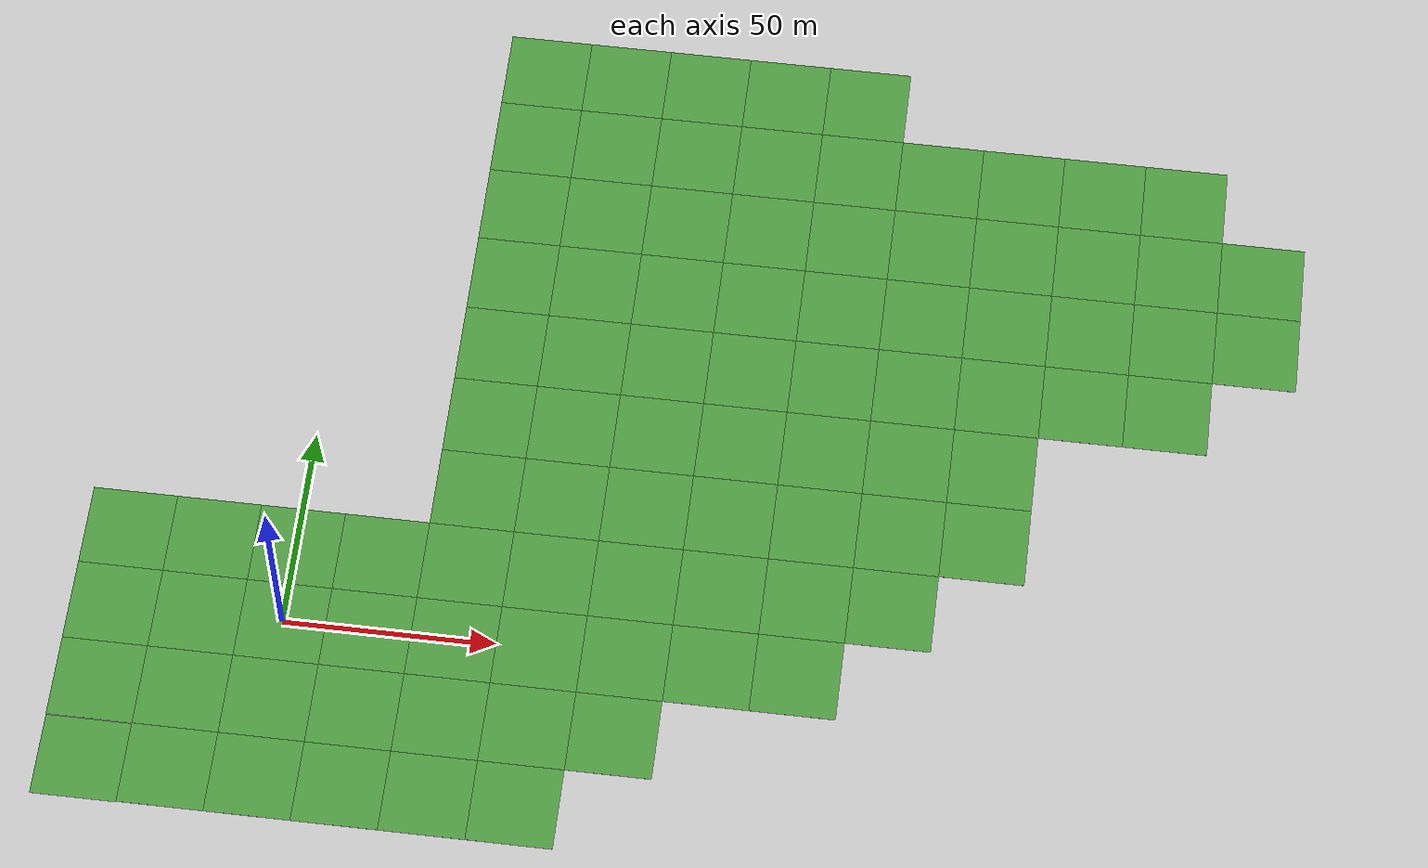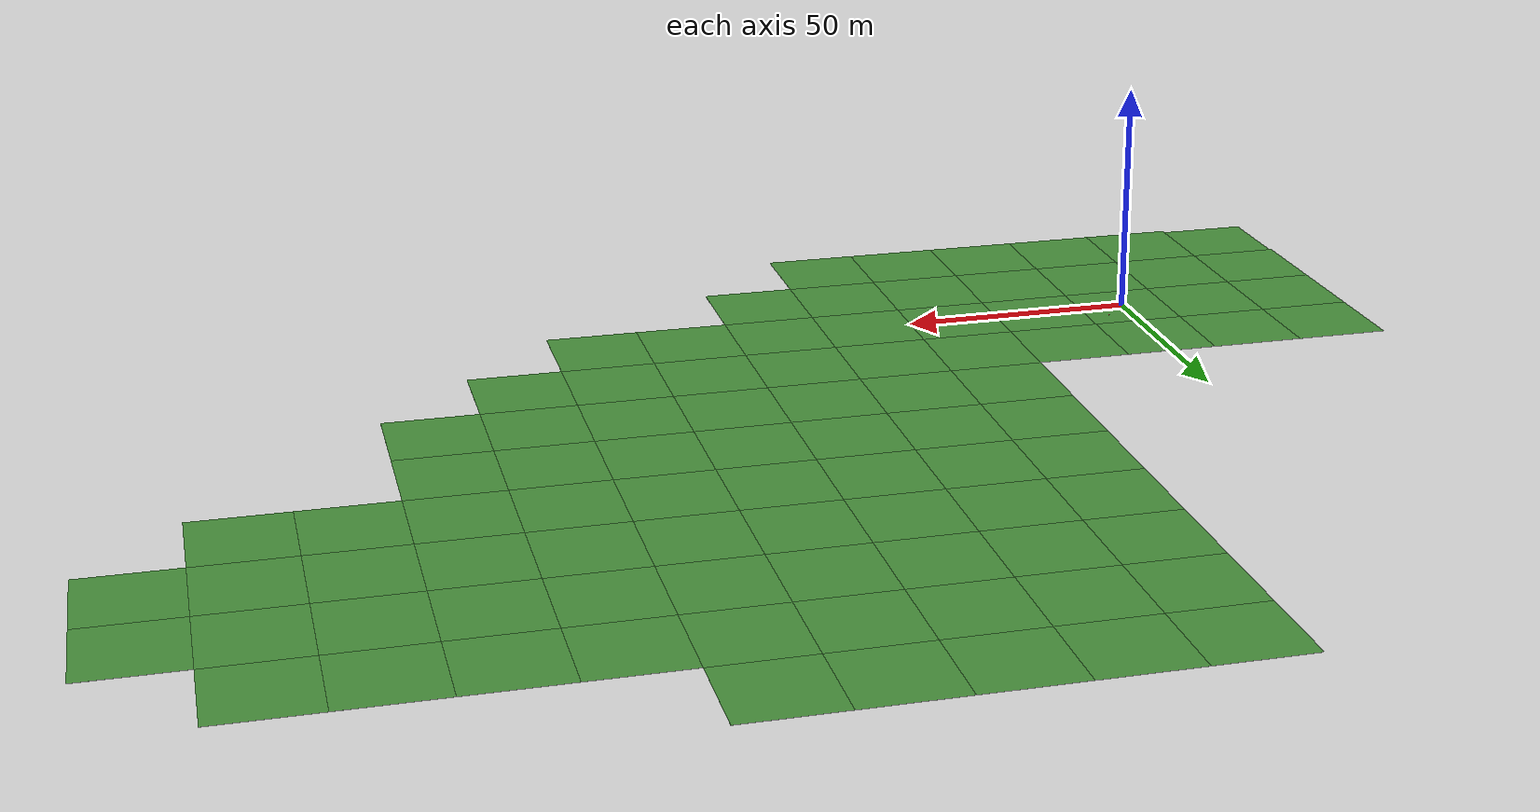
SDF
<sdf version="1.5">
 <world name="outdoor">
  <scene>
   <ambient>0.2 0.2 0.2 1.0</ambient>
   <shadows>0</shadows>
   <grid>false</grid>
   <sky><clouds><speed>4</speed></clouds></sky>
  </scene>
  <physics type="ode">
   <ode>
    <solver><type>quick</type><iters>100</iters><sor>1.0</sor></solver>
    <constraints>
     <cfm>0.0</cfm>
     <erp>0.9</erp>
     <contact_max_correcting_vel>0.1</contact_max_correcting_vel>
     <contact_surface_layer>0.0</contact_surface_layer>
    </constraints>
   </ode>
   <real_time_update_rate>1000</real_time_update_rate>
   <max_step_size>0.0010</max_step_size>
  </physics>
  <light type="directional" name="sun">
   <cast_shadows>false</cast_shadows>
   <pose>0 0 100 0 0 0</pose>
   <diffuse>0.8 0.8 0.8 1</diffuse>
   <specular>0.9 0.9 0.9 1</specular>
   <attenuation>
    <range>1000</range>
    <constant>0.9</constant>
    <linear>0.01</linear>
    <quadratic>0.001</quadratic>
   </attenuation>
   <direction>0.2 0.2 -0.9</direction>
  </light>
  <include><uri>model://grass_plane</uri></include>
  <model name="landmine1"><include><uri>model://landmine</uri></include><pose>5 5 0 0 0 0</pose></model>
  <model name="landmine2"><include><uri>model://landmine</uri></include><pose>2 -2 0 0 0 0</pose></model>
  <model name="landmine3"><include><uri>model://landmine</uri></include><pose>-3 -5 0 0 0 0</pose></model>
  <model name="landmine4"><include><uri>model://landmine</uri></include><pose>-1 3 0 0 0 0</pose></model>
 </world>
</sdf>

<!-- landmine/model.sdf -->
<sdf version="1.6">
  <model name="landmine">
    <static>false</static>

    <link name="body">
      <!-- Inertial: combined mass ~0.3kg, approximated as a solid cylinder. COM lifted toward center. -->
      <inertial>
        <pose>0 0 0.03 0 0 0</pose>
        <mass>0.30</mass>
        <inertia>
          <ixx>0.00039</ixx>
          <iyy>0.00039</iyy>
          <izz>0.00045</izz>
          <ixy>0.0</ixy>
          <ixz>0.0</ixz>
          <iyz>0.0</iyz>
        </inertia>
      </inertial>

      <!-- ===== Disc body (mine) ===== -->
      <collision name="disc_collision">
        <pose>0 0 0.0125 0 0 0</pose>
        <geometry>
          <cylinder>
            <radius>0.068</radius>
            <length>0.025</length>
          </cylinder>
        </geometry>
        <surface>
          <friction>
            <ode>
              <mu>1.0</mu>
              <mu2>1.0</mu2>
            </ode>
          </friction>
          <contact>
            <ode>
              <kp>1e6</kp>
              <kd>1.0</kd>
              <max_vel>0.0</max_vel>
              <min_depth>0.001</min_depth>
            </ode>
          </contact>
        </surface>
      </collision>
      <visual name="disc_visual">
        <pose>0 0 0.0125 0 0 0</pose>
        <geometry>
          <cylinder>
            <radius>0.068</radius>
            <length>0.025</length>
          </cylinder>
        </geometry>
        <material>
          <ambient>0.7 0.05 0.05 1</ambient>
          <diffuse>0.85 0.1 0.1 1</diffuse>
          <specular>0.1 0.1 0.1 1</specular>
        </material>
      </visual>

      <!-- ===== Detonator block (grasp target) ===== -->
      <collision name="detonator_collision">
        <pose>0 0 0.055 0 0 0</pose>
        <geometry>
          <box>
            <size>0.04 0.04 0.06</size>
          </box>
        </geometry>
        <surface>
          <friction>
            <ode>
              <mu>1.2</mu>
              <mu2>1.2</mu2>
            </ode>
          </friction>
          <contact>
            <ode>
              <kp>1e6</kp>
              <kd>1.0</kd>
              <max_vel>0.0</max_vel>
              <min_depth>0.001</min_depth>
            </ode>
          </contact>
        </surface>
      </collision>
      <visual name="detonator_visual">
        <pose>0 0 0.055 0 0 0</pose>
        <geometry>
          <box>
            <size>0.04 0.04 0.06</size>
          </box>
        </geometry>
        <material>
          <ambient>0.8 0.7 0.0 1</ambient>
          <diffuse>0.95 0.85 0.0 1</diffuse>
          <specular>0.2 0.2 0.1 1</specular>
        </material>
      </visual>
    </link>
  </model>
</sdf>

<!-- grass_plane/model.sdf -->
<sdf version='1.4'>
  <model name='grass_plane'>
    <static>true</static>
    <link name='link'>
      <collision name='collision'>
        <geometry>
          <plane>
            <normal>0 0 1</normal>
            <size>500 500</size>
          </plane>
        </geometry>
        <surface>
          <friction>
            <ode>
              <mu>0.5</mu>
              <mu2>.5</mu2>
            </ode>
          </friction>
        </surface>
      </collision>

      <visual name='visual_0'>
        <pose>-40 -40 0 0 0 0</pose>

        <cast_shadows>false</cast_shadows>
        <geometry>
          <plane>
            <normal>0 0 1</normal>
            <size>20 20</size>
          </plane>
        </geometry>
        <material>
          <script>
            <uri>model://../model_source/models/grass_plane/materials/scripts</uri>
            <uri>model://../model_source/models/grass_plane/materials/textures</uri>
            <name>vrc/grass</name>
          </script>
        </material>
      </visual>

      <visual name='visual_1'>
        <pose>-20 -40 0 0 0 0</pose>

        <cast_shadows>false</cast_shadows>
        <geometry>
          <plane>
            <normal>0 0 1</normal>
            <size>20 20</size>
          </plane>
        </geometry>
        <material>
          <script>
            <uri>model://../model_source/models/grass_plane/materials/scripts</uri>
            <uri>model://../model_source/models/grass_plane/materials/textures</uri>
            <name>vrc/grass</name>
          </script>
        </material>
      </visual>

      <visual name='visual_2'>
        <pose>0 -40 0 0 0 0</pose>

        <cast_shadows>false</cast_shadows>
        <geometry>
          <plane>
            <normal>0 0 1</normal>
            <size>20 20</size>
          </plane>
        </geometry>
        <material>
          <script>
            <uri>model://../model_source/models/grass_plane/materials/scripts</uri>
            <uri>model://../model_source/models/grass_plane/materials/textures</uri>
            <name>vrc/grass</name>
          </script>
        </material>
      </visual>

      <visual name='visual_3'>
        <pose>20 -40 0 0 0 0</pose>

        <cast_shadows>false</cast_shadows>
        <geometry>
          <plane>
            <normal>0 0 1</normal>
            <size>20 20</size>
          </plane>
        </geometry>
        <material>
          <script>
            <uri>model://../model_source/models/grass_plane/materials/scripts</uri>
            <uri>model://../model_source/models/grass_plane/materials/textures</uri>
            <name>vrc/grass</name>
          </script>
        </material>
      </visual>

      <visual name='visual_4'>
        <pose>40 -40 0 0 0 0</pose>

        <cast_shadows>false</cast_shadows>
        <geometry>
          <plane>
            <normal>0 0 1</normal>
            <size>20 20</size>
          </plane>
        </geometry>
        <material>
          <script>
            <uri>model://../model_source/models/grass_plane/materials/scripts</uri>
            <uri>model://../model_source/models/grass_plane/materials/textures</uri>
            <name>vrc/grass</name>
          </script>
        </material>
      </visual>

      <visual name='visual_5'>
        <pose>60 -40 0 0 0 0</pose>

        <cast_shadows>false</cast_shadows>
        <geometry>
          <plane>
            <normal>0 0 1</normal>
            <size>20 20</size>
          </plane>
        </geometry>
        <material>
          <script>
            <uri>model://../model_source/models/grass_plane/materials/scripts</uri>
            <uri>model://../model_source/models/grass_plane/materials/textures</uri>
            <name>vrc/grass</name>
          </script>
        </material>
      </visual>

      <visual name='visual_6'>
        <pose>-40 -20 0 0 0 0</pose>

        <cast_shadows>false</cast_shadows>
        <geometry>
          <plane>
            <normal>0 0 1</normal>
            <size>20 20</size>
          </plane>
        </geometry>
        <material>
          <script>
            <uri>model://../model_source/models/grass_plane/materials/scripts</uri>
            <uri>model://../model_source/models/grass_plane/materials/textures</uri>
            <name>vrc/grass</name>
          </script>
        </material>
      </visual>

      <visual name='visual_7'>
        <pose>-20 -20 0 0 0 0</pose>

        <cast_shadows>false</cast_shadows>
        <geometry>
          <plane>
            <normal>0 0 1</normal>
            <size>20 20</size>
          </plane>
        </geometry>
        <material>
          <script>
            <uri>model://../model_source/models/grass_plane/materials/scripts</uri>
            <uri>model://../model_source/models/grass_plane/materials/textures</uri>
            <name>vrc/grass</name>
          </script>
        </material>
      </visual>

      <visual name='visual_8'>
        <pose>0 -20 0 0 0 0</pose>

        <cast_shadows>false</cast_shadows>
        <geometry>
          <plane>
            <normal>0 0 1</normal>
            <size>20 20</size>
          </plane>
        </geometry>
        <material>
          <script>
            <uri>model://../model_source/models/grass_plane/materials/scripts</uri>
            <uri>model://../model_source/models/grass_plane/materials/textures</uri>
            <name>vrc/grass</name>
          </script>
        </material>
      </visual>

      <visual name='visual_9'>
        <pose>20 -20 0 0 0 0</pose>

        <cast_shadows>false</cast_shadows>
        <geometry>
          <plane>
            <normal>0 0 1</normal>
            <size>20 20</size>
          </plane>
        </geometry>
        <material>
          <script>
            <uri>model://../model_source/models/grass_plane/materials/scripts</uri>
            <uri>model://../model_source/models/grass_plane/materials/textures</uri>
            <name>vrc/grass</name>
          </script>
        </material>
      </visual>

      <visual name='visual_10'>
        <pose>40 -20 0 0 0 0</pose>

        <cast_shadows>false</cast_shadows>
        <geometry>
          <plane>
            <normal>0 0 1</normal>
            <size>20 20</size>
          </plane>
        </geometry>
        <material>
          <script>
            <uri>model://../model_source/models/grass_plane/materials/scripts</uri>
            <uri>model://../model_source/models/grass_plane/materials/textures</uri>
            <name>vrc/grass</name>
          </script>
        </material>
      </visual>

      <visual name='visual_11'>
        <pose>60 -20 0 0 0 0</pose>

        <cast_shadows>false</cast_shadows>
        <geometry>
          <plane>
            <normal>0 0 1</normal>
            <size>20 20</size>
          </plane>
        </geometry>
        <material>
          <script>
            <uri>model://../model_source/models/grass_plane/materials/scripts</uri>
            <uri>model://../model_source/models/grass_plane/materials/textures</uri>
            <name>vrc/grass</name>
          </script>
        </material>
      </visual>

      <visual name='visual_12'>
        <pose>80 -20 0 0 0 0</pose>

        <cast_shadows>false</cast_shadows>
        <geometry>
          <plane>
            <normal>0 0 1</normal>
            <size>20 20</size>
          </plane>
        </geometry>
        <material>
          <script>
            <uri>model://../model_source/models/grass_plane/materials/scripts</uri>
            <uri>model://../model_source/models/grass_plane/materials/textures</uri>
            <name>vrc/grass</name>
          </script>
        </material>
      </visual>

      <visual name='visual_13'>
        <pose>-40 0 0 0 0 0</pose>

        <cast_shadows>false</cast_shadows>
        <geometry>
          <plane>
            <normal>0 0 1</normal>
            <size>20 20</size>
          </plane>
        </geometry>
        <material>
          <script>
            <uri>model://../model_source/models/grass_plane/materials/scripts</uri>
            <uri>model://../model_source/models/grass_plane/materials/textures</uri>
            <name>vrc/grass</name>
          </script>
        </material>
      </visual>

      <visual name='visual_14'>
        <pose>-20 0 0 0 0 0</pose>

        <cast_shadows>false</cast_shadows>
        <geometry>
          <plane>
            <normal>0 0 1</normal>
            <size>20 20</size>
          </plane>
        </geometry>
        <material>
          <script>
            <uri>model://../model_source/models/grass_plane/materials/scripts</uri>
            <uri>model://../model_source/models/grass_plane/materials/textures</uri>
            <name>vrc/grass</name>
          </script>
        </material>
      </visual>

      <visual name='visual_15'>
        <pose>0 0 0 0 0 0</pose>

        <cast_shadows>false</cast_shadows>
        <geometry>
          <plane>
            <normal>0 0 1</normal>
            <size>20 20</size>
          </plane>
        </geometry>
        <material>
          <script>
            <uri>model://../model_source/models/grass_plane/materials/scripts</uri>
            <uri>model://../model_source/models/grass_plane/materials/textures</uri>
            <name>vrc/grass</name>
          </script>
        </material>
      </visual>

      <visual name='visual_16'>
        <pose>20 0 0 0 0 0</pose>

        <cast_shadows>false</cast_shadows>
        <geometry>
          <plane>
            <normal>0 0 1</normal>
            <size>20 20</size>
          </plane>
        </geometry>
        <material>
          <script>
            <uri>model://../model_source/models/grass_plane/materials/scripts</uri>
            <uri>model://../model_source/models/grass_plane/materials/textures</uri>
            <name>vrc/grass</name>
          </script>
        </material>
      </visual>

      <visual name='visual_17'>
        <pose>40 0 0 0 0 0</pose>

        <cast_shadows>false</cast_shadows>
        <geometry>
          <plane>
            <normal>0 0 1</normal>
            <size>20 20</size>
          </plane>
        </geometry>
        <material>
          <script>
            <uri>model://../model_source/models/grass_plane/materials/scripts</uri>
            <uri>model://../model_source/models/grass_plane/materials/textures</uri>
            <name>vrc/grass</name>
          </script>
        </material>
      </visual>

      <visual name='visual_18'>
        <pose>60 0 0 0 0 0</pose>

        <cast_shadows>false</cast_shadows>
        <geometry>
          <plane>
            <normal>0 0 1</normal>
            <size>20 20</size>
          </plane>
        </geometry>
        <material>
          <script>
            <uri>model://../model_source/models/grass_plane/materials/scripts</uri>
            <uri>model://../model_source/models/grass_plane/materials/textures</uri>
            <name>vrc/grass</name>
          </script>
        </material>
      </visual>

      <visual name='visual_19'>
        <pose>80 0 0 0 0 0</pose>

        <cast_shadows>false</cast_shadows>
        <geometry>
          <plane>
            <normal>0 0 1</normal>
            <size>20 20</size>
          </plane>
        </geometry>
        <material>
          <script>
            <uri>model://../model_source/models/grass_plane/materials/scripts</uri>
            <uri>model://../model_source/models/grass_plane/materials/textures</uri>
            <name>vrc/grass</name>
          </script>
        </material>
      </visual>

      <visual name='visual_20'>
        <pose>100 0 0 0 0 0</pose>

        <cast_shadows>false</cast_shadows>
        <geometry>
          <plane>
            <normal>0 0 1</normal>
            <size>20 20</size>
          </plane>
        </geometry>
        <material>
          <script>
            <uri>model://../model_source/models/grass_plane/materials/scripts</uri>
            <uri>model://../model_source/models/grass_plane/materials/textures</uri>
            <name>vrc/grass</name>
          </script>
        </material>
      </visual>

      <visual name='visual_21'>
        <pose>120 0 0 0 0 0</pose>

        <cast_shadows>false</cast_shadows>
        <geometry>
          <plane>
            <normal>0 0 1</normal>
            <size>20 20</size>
          </plane>
        </geometry>
        <material>
          <script>
            <uri>model://../model_source/models/grass_plane/materials/scripts</uri>
            <uri>model://../model_source/models/grass_plane/materials/textures</uri>
            <name>vrc/grass</name>
          </script>
        </material>
      </visual>

      <visual name='visual_22'>
        <pose>-40 20 0 0 0 0</pose>

        <cast_shadows>false</cast_shadows>
        <geometry>
          <plane>
            <normal>0 0 1</normal>
            <size>20 20</size>
          </plane>
        </geometry>
        <material>
          <script>
            <uri>model://../model_source/models/grass_plane/materials/scripts</uri>
            <uri>model://../model_source/models/grass_plane/materials/textures</uri>
            <name>vrc/grass</name>
          </script>
        </material>
      </visual>

      <visual name='visual_23'>
        <pose>-20 20 0 0 0 0</pose>

        <cast_shadows>false</cast_shadows>
        <geometry>
          <plane>
            <normal>0 0 1</normal>
            <size>20 20</size>
          </plane>
        </geometry>
        <material>
          <script>
            <uri>model://../model_source/models/grass_plane/materials/scripts</uri>
            <uri>model://../model_source/models/grass_plane/materials/textures</uri>
            <name>vrc/grass</name>
          </script>
        </material>
      </visual>

      <visual name='visual_24'>
        <pose>0 20 0 0 0 0</pose>

        <cast_shadows>false</cast_shadows>
        <geometry>
          <plane>
            <normal>0 0 1</normal>
            <size>20 20</size>
          </plane>
        </geometry>
        <material>
          <script>
            <uri>model://../model_source/models/grass_plane/materials/scripts</uri>
            <uri>model://../model_source/models/grass_plane/materials/textures</uri>
            <name>vrc/grass</name>
          </script>
        </material>
      </visual>

      <visual name='visual_25'>
        <pose>20 20 0 0 0 0</pose>

        <cast_shadows>false</cast_shadows>
        <geometry>
          <plane>
            <normal>0 0 1</normal>
            <size>20 20</size>
          </plane>
        </geometry>
        <material>
          <script>
            <uri>model://../model_source/models/grass_plane/materials/scripts</uri>
            <uri>model://../model_source/models/grass_plane/materials/textures</uri>
            <name>vrc/grass</name>
          </script>
        </material>
      </visual>

      <visual name='visual_26'>
        <pose>40 20 0 0 0 0</pose>

        <cast_shadows>false</cast_shadows>
        <geometry>
          <plane>
            <normal>0 0 1</normal>
            <size>20 20</size>
          </plane>
        </geometry>
        <material>
          <script>
            <uri>model://../model_source/models/grass_plane/materials/scripts</uri>
            <uri>model://../model_source/models/grass_plane/materials/textures</uri>
            <name>vrc/grass</name>
          </script>
        </material>
      </visual>

      <visual name='visual_27'>
        <pose>60 20 0 0 0 0</pose>

        <cast_shadows>false</cast_shadows>
        <geometry>
          <plane>
            <normal>0 0 1</normal>
            <size>20 20</size>
          </plane>
        </geometry>
        <material>
          <script>
            <uri>model://../model_source/models/grass_plane/materials/scripts</uri>
            <uri>model://../model_source/models/grass_plane/materials/textures</uri>
            <name>vrc/grass</name>
          </script>
        </material>
      </visual>

      <visual name='visual_28'>
        <pose>80 20 0 0 0 0</pose>

        <cast_shadows>false</cast_shadows>
        <geometry>
          <plane>
            <normal>0 0 1</normal>
            <size>20 20</size>
          </plane>
        </geometry>
        <material>
          <script>
            <uri>model://../model_source/models/grass_plane/materials/scripts</uri>
            <uri>model://../model_source/models/grass_plane/materials/textures</uri>
            <name>vrc/grass</name>
          </script>
        </material>
      </visual>

      <visual name='visual_29'>
        <pose>100 20 0 0 0 0</pose>

        <cast_shadows>false</cast_shadows>
        <geometry>
          <plane>
            <normal>0 0 1</normal>
            <size>20 20</size>
          </plane>
        </geometry>
        <material>
          <script>
            <uri>model://../model_source/models/grass_plane/materials/scripts</uri>
            <uri>model://../model_source/models/grass_plane/materials/textures</uri>
            <name>vrc/grass</name>
          </script>
        </material>
      </visual>

      <visual name='visual_30'>
        <pose>120 20 0 0 0 0</pose>

        <cast_shadows>false</cast_shadows>
        <geometry>
          <plane>
            <normal>0 0 1</normal>
            <size>20 20</size>
          </plane>
        </geometry>
        <material>
          <script>
            <uri>model://../model_source/models/grass_plane/materials/scripts</uri>
            <uri>model://../model_source/models/grass_plane/materials/textures</uri>
            <name>vrc/grass</name>
          </script>
        </material>
      </visual>

      <visual name='visual_31'>
        <pose>140 20 0 0 0 0</pose>

        <cast_shadows>false</cast_shadows>
        <geometry>
          <plane>
            <normal>0 0 1</normal>
            <size>20 20</size>
          </plane>
        </geometry>
        <material>
          <script>
            <uri>model://../model_source/models/grass_plane/materials/scripts</uri>
            <uri>model://../model_source/models/grass_plane/materials/textures</uri>
            <name>vrc/grass</name>
          </script>
        </material>
      </visual>

      <visual name='visual_32'>
        <pose>40 40 0 0 0 0</pose>

        <cast_shadows>false</cast_shadows>
        <geometry>
          <plane>
            <normal>0 0 1</normal>
            <size>20 20</size>
          </plane>
        </geometry>
        <material>
          <script>
            <uri>model://../model_source/models/grass_plane/materials/scripts</uri>
            <uri>model://../model_source/models/grass_plane/materials/textures</uri>
            <name>vrc/grass</name>
          </script>
        </material>
      </visual>

      <visual name='visual_33'>
        <pose>60 40 0 0 0 0</pose>

        <cast_shadows>false</cast_shadows>
        <geometry>
          <plane>
            <normal>0 0 1</normal>
            <size>20 20</size>
          </plane>
        </geometry>
        <material>
          <script>
            <uri>model://../model_source/models/grass_plane/materials/scripts</uri>
            <uri>model://../model_source/models/grass_plane/materials/textures</uri>
            <name>vrc/grass</name>
          </script>
        </material>
      </visual>

      <visual name='visual_34'>
        <pose>80 40 0 0 0 0</pose>

        <cast_shadows>false</cast_shadows>
        <geometry>
          <plane>
            <normal>0 0 1</normal>
            <size>20 20</size>
          </plane>
        </geometry>
        <material>
          <script>
            <uri>model://../model_source/models/grass_plane/materials/scripts</uri>
            <uri>model://../model_source/models/grass_plane/materials/textures</uri>
            <name>vrc/grass</name>
          </script>
        </material>
      </visual>

      <visual name='visual_35'>
        <pose>100 40 0 0 0 0</pose>

        <cast_shadows>false</cast_shadows>
        <geometry>
          <plane>
            <normal>0 0 1</normal>
            <size>20 20</size>
          </plane>
        </geometry>
        <material>
          <script>
            <uri>model://../model_source/models/grass_plane/materials/scripts</uri>
            <uri>model://../model_source/models/grass_plane/materials/textures</uri>
            <name>vrc/grass</name>
          </script>
        </material>
      </visual>

      <visual name='visual_36'>
        <pose>120 40 0 0 0 0</pose>

        <cast_shadows>false</cast_shadows>
        <geometry>
          <plane>
            <normal>0 0 1</normal>
            <size>20 20</size>
          </plane>
        </geometry>
        <material>
          <script>
            <uri>model://../model_source/models/grass_plane/materials/scripts</uri>
            <uri>model://../model_source/models/grass_plane/materials/textures</uri>
            <name>vrc/grass</name>
          </script>
        </material>
      </visual>

      <visual name='visual_37'>
        <pose>140 40 0 0 0 0</pose>

        <cast_shadows>false</cast_shadows>
        <geometry>
          <plane>
            <normal>0 0 1</normal>
            <size>20 20</size>
          </plane>
        </geometry>
        <material>
          <script>
            <uri>model://../model_source/models/grass_plane/materials/scripts</uri>
            <uri>model://../model_source/models/grass_plane/materials/textures</uri>
            <name>vrc/grass</name>
          </script>
        </material>
      </visual>

      <visual name='visual_38'>
        <pose>160 40 0 0 0 0</pose>

        <cast_shadows>false</cast_shadows>
        <geometry>
          <plane>
            <normal>0 0 1</normal>
            <size>20 20</size>
          </plane>
        </geometry>
        <material>
          <script>
            <uri>model://../model_source/models/grass_plane/materials/scripts</uri>
            <uri>model://../model_source/models/grass_plane/materials/textures</uri>
            <name>vrc/grass</name>
          </script>
        </material>
      </visual>

      <visual name='visual_39'>
        <pose>40 60 0 0 0 0</pose>

        <cast_shadows>false</cast_shadows>
        <geometry>
          <plane>
            <normal>0 0 1</normal>
            <size>20 20</size>
          </plane>
        </geometry>
        <material>
          <script>
            <uri>model://../model_source/models/grass_plane/materials/scripts</uri>
            <uri>model://../model_source/models/grass_plane/materials/textures</uri>
            <name>vrc/grass</name>
          </script>
        </material>
      </visual>

      <visual name='visual_40'>
        <pose>60 60 0 0 0 0</pose>

        <cast_shadows>false</cast_shadows>
        <geometry>
          <plane>
            <normal>0 0 1</normal>
            <size>20 20</size>
          </plane>
        </geometry>
        <material>
          <script>
            <uri>model://../model_source/models/grass_plane/materials/scripts</uri>
            <uri>model://../model_source/models/grass_plane/materials/textures</uri>
            <name>vrc/grass</name>
          </script>
        </material>
      </visual>

      <visual name='visual_41'>
        <pose>80 60 0 0 0 0</pose>

        <cast_shadows>false</cast_shadows>
        <geometry>
          <plane>
            <normal>0 0 1</normal>
            <size>20 20</size>
          </plane>
        </geometry>
        <material>
          <script>
            <uri>model://../model_source/models/grass_plane/materials/scripts</uri>
            <uri>model://../model_source/models/grass_plane/materials/textures</uri>
            <name>vrc/grass</name>
          </script>
        </material>
      </visual>

      <visual name='visual_42'>
        <pose>100 60 0 0 0 0</pose>

        <cast_shadows>false</cast_shadows>
        <geometry>
          <plane>
            <normal>0 0 1</normal>
            <size>20 20</size>
          </plane>
        </geometry>
        <material>
          <script>
            <uri>model://../model_source/models/grass_plane/materials/scripts</uri>
            <uri>model://../model_source/models/grass_plane/materials/textures</uri>
            <name>vrc/grass</name>
          </script>
        </material>
      </visual>

      <visual name='visual_43'>
        <pose>120 60 0 0 0 0</pose>

        <cast_shadows>false</cast_shadows>
        <geometry>
          <plane>
            <normal>0 0 1</normal>
            <size>20 20</size>
          </plane>
        </geometry>
        <material>
          <script>
            <uri>model://../model_source/models/grass_plane/materials/scripts</uri>
            <uri>model://../model_source/models/grass_plane/materials/textures</uri>
            <name>vrc/grass</name>
          </script>
        </material>
      </visual>

      <visual name='visual_44'>
        <pose>140 60 0 0 0 0</pose>

        <cast_shadows>false</cast_shadows>
        <geometry>
          <plane>
            <normal>0 0 1</normal>
            <size>20 20</size>
          </plane>
        </geometry>
        <material>
          <script>
            <uri>model://../model_source/models/grass_plane/materials/scripts</uri>
            <uri>model://../model_source/models/grass_plane/materials/textures</uri>
            <name>vrc/grass</name>
          </script>
        </material>
      </visual>

      <visual name='visual_45'>
        <pose>160 60 0 0 0 0</pose>

        <cast_shadows>false</cast_shadows>
        <geometry>
          <plane>
            <normal>0 0 1</normal>
            <size>20 20</size>
          </plane>
        </geometry>
        <material>
          <script>
            <uri>model://../model_source/models/grass_plane/materials/scripts</uri>
            <uri>model://../model_source/models/grass_plane/materials/textures</uri>
            <name>vrc/grass</name>
          </script>
        </material>
      </visual>

      <visual name='visual_46'>
        <pose>40 80 0 0 0 0</pose>

        <cast_shadows>false</cast_shadows>
        <geometry>
          <plane>
            <normal>0 0 1</normal>
            <size>20 20</size>
          </plane>
        </geometry>
        <material>
          <script>
            <uri>model://../model_source/models/grass_plane/materials/scripts</uri>
            <uri>model://../model_source/models/grass_plane/materials/textures</uri>
            <name>vrc/grass</name>
          </script>
        </material>
      </visual>

      <visual name='visual_47'>
        <pose>60 80 0 0 0 0</pose>

        <cast_shadows>false</cast_shadows>
        <geometry>
          <plane>
            <normal>0 0 1</normal>
            <size>20 20</size>
          </plane>
        </geometry>
        <material>
          <script>
            <uri>model://../model_source/models/grass_plane/materials/scripts</uri>
            <uri>model://../model_source/models/grass_plane/materials/textures</uri>
            <name>vrc/grass</name>
          </script>
        </material>
      </visual>

      <visual name='visual_48'>
        <pose>80 80 0 0 0 0</pose>

        <cast_shadows>false</cast_shadows>
        <geometry>
          <plane>
            <normal>0 0 1</normal>
            <size>20 20</size>
          </plane>
        </geometry>
        <material>
          <script>
            <uri>model://../model_source/models/grass_plane/materials/scripts</uri>
            <uri>model://../model_source/models/grass_plane/materials/textures</uri>
            <name>vrc/grass</name>
          </script>
        </material>
      </visual>

      <visual name='visual_49'>
        <pose>100 80 0 0 0 0</pose>

        <cast_shadows>false</cast_shadows>
        <geometry>
          <plane>
            <normal>0 0 1</normal>
            <size>20 20</size>
          </plane>
        </geometry>
        <material>
          <script>
            <uri>model://../model_source/models/grass_plane/materials/scripts</uri>
            <uri>model://../model_source/models/grass_plane/materials/textures</uri>
            <name>vrc/grass</name>
          </script>
        </material>
      </visual>

      <visual name='visual_50'>
        <pose>120 80 0 0 0 0</pose>

        <cast_shadows>false</cast_shadows>
        <geometry>
          <plane>
            <normal>0 0 1</normal>
            <size>20 20</size>
          </plane>
        </geometry>
        <material>
          <script>
            <uri>model://../model_source/models/grass_plane/materials/scripts</uri>
            <uri>model://../model_source/models/grass_plane/materials/textures</uri>
            <name>vrc/grass</name>
          </script>
        </material>
      </visual>

      <visual name='visual_51'>
        <pose>140 80 0 0 0 0</pose>

        <cast_shadows>false</cast_shadows>
        <geometry>
          <plane>
            <normal>0 0 1</normal>
            <size>20 20</size>
          </plane>
        </geometry>
        <material>
          <script>
            <uri>model://../model_source/models/grass_plane/materials/scripts</uri>
            <uri>model://../model_source/models/grass_plane/materials/textures</uri>
            <name>vrc/grass</name>
          </script>
        </material>
      </visual>

      <visual name='visual_52'>
        <pose>160 80 0 0 0 0</pose>

        <cast_shadows>false</cast_shadows>
        <geometry>
          <plane>
            <normal>0 0 1</normal>
            <size>20 20</size>
          </plane>
        </geometry>
        <material>
          <script>
            <uri>model://../model_source/models/grass_plane/materials/scripts</uri>
            <uri>model://../model_source/models/grass_plane/materials/textures</uri>
            <name>vrc/grass</name>
          </script>
        </material>
      </visual>

      <visual name='visual_53'>
        <pose>180 80 0 0 0 0</pose>

        <cast_shadows>false</cast_shadows>
        <geometry>
          <plane>
            <normal>0 0 1</normal>
            <size>20 20</size>
          </plane>
        </geometry>
        <material>
          <script>
            <uri>model://../model_source/models/grass_plane/materials/scripts</uri>
            <uri>model://../model_source/models/grass_plane/materials/textures</uri>
            <name>vrc/grass</name>
          </script>
        </material>
      </visual>

      <visual name='visual_54'>
        <pose>200 80 0 0 0 0</pose>

        <cast_shadows>false</cast_shadows>
        <geometry>
          <plane>
            <normal>0 0 1</normal>
            <size>20 20</size>
          </plane>
        </geometry>
        <material>
          <script>
            <uri>model://../model_source/models/grass_plane/materials/scripts</uri>
            <uri>model://../model_source/models/grass_plane/materials/textures</uri>
            <name>vrc/grass</name>
          </script>
        </material>
      </visual>

      <visual name='visual_55'>
        <pose>40 100 0 0 0 0</pose>

        <cast_shadows>false</cast_shadows>
        <geometry>
          <plane>
            <normal>0 0 1</normal>
            <size>20 20</size>
          </plane>
        </geometry>
        <material>
          <script>
            <uri>model://../model_source/models/grass_plane/materials/scripts</uri>
            <uri>model://../model_source/models/grass_plane/materials/textures</uri>
            <name>vrc/grass</name>
          </script>
        </material>
      </visual>

      <visual name='visual_56'>
        <pose>60 100 0 0 0 0</pose>

        <cast_shadows>false</cast_shadows>
        <geometry>
          <plane>
            <normal>0 0 1</normal>
            <size>20 20</size>
          </plane>
        </geometry>
        <material>
          <script>
            <uri>model://../model_source/models/grass_plane/materials/scripts</uri>
            <uri>model://../model_source/models/grass_plane/materials/textures</uri>
            <name>vrc/grass</name>
          </script>
        </material>
      </visual>

      <visual name='visual_57'>
        <pose>80 100 0 0 0 0</pose>

        <cast_shadows>false</cast_shadows>
        <geometry>
          <plane>
            <normal>0 0 1</normal>
            <size>20 20</size>
          </plane>
        </geometry>
        <material>
          <script>
            <uri>model://../model_source/models/grass_plane/materials/scripts</uri>
            <uri>model://../model_source/models/grass_plane/materials/textures</uri>
            <name>vrc/grass</name>
          </script>
        </material>
      </visual>

      <visual name='visual_58'>
        <pose>100 100 0 0 0 0</pose>

        <cast_shadows>false</cast_shadows>
        <geometry>
          <plane>
            <normal>0 0 1</normal>
            <size>20 20</size>
          </plane>
        </geometry>
        <material>
          <script>
            <uri>model://../model_source/models/grass_plane/materials/scripts</uri>
            <uri>model://../model_source/models/grass_plane/materials/textures</uri>
            <name>vrc/grass</name>
          </script>
        </material>
      </visual>

      <visual name='visual_59'>
        <pose>120 100 0 0 0 0</pose>

        <cast_shadows>false</cast_shadows>
        <geometry>
          <plane>
            <normal>0 0 1</normal>
            <size>20 20</size>
          </plane>
        </geometry>
        <material>
          <script>
            <uri>model://../model_source/models/grass_plane/materials/scripts</uri>
            <uri>model://../model_source/models/grass_plane/materials/textures</uri>
            <name>vrc/grass</name>
          </script>
        </material>
      </visual>

      <visual name='visual_60'>
        <pose>140 100 0 0 0 0</pose>

        <cast_shadows>false</cast_shadows>
        <geometry>
          <plane>
            <normal>0 0 1</normal>
            <size>20 20</size>
          </plane>
        </geometry>
        <material>
          <script>
            <uri>model://../model_source/models/grass_plane/materials/scripts</uri>
            <uri>model://../model_source/models/grass_plane/materials/textures</uri>
            <name>vrc/grass</name>
          </script>
        </material>
      </visual>

      <visual name='visual_61'>
        <pose>160 100 0 0 0 0</pose>

        <cast_shadows>false</cast_shadows>
        <geometry>
          <plane>
            <normal>0 0 1</normal>
            <size>20 20</size>
          </plane>
        </geometry>
        <material>
          <script>
            <uri>model://../model_source/models/grass_plane/materials/scripts</uri>
            <uri>model://../model_source/models/grass_plane/materials/textures</uri>
            <name>vrc/grass</name>
          </script>
        </material>
      </visual>

      <visual name='visual_62'>
        <pose>180 100 0 0 0 0</pose>

        <cast_shadows>false</cast_shadows>
        <geometry>
          <plane>
            <normal>0 0 1</normal>
            <size>20 20</size>
          </plane>
        </geometry>
        <material>
          <script>
            <uri>model://../model_source/models/grass_plane/materials/scripts</uri>
            <uri>model://../model_source/models/grass_plane/materials/textures</uri>
            <name>vrc/grass</name>
          </script>
        </material>
      </visual>

      <visual name='visual_63'>
        <pose>200 100 0 0 0 0</pose>

        <cast_shadows>false</cast_shadows>
        <geometry>
          <plane>
            <normal>0 0 1</normal>
            <size>20 20</size>
          </plane>
        </geometry>
        <material>
          <script>
            <uri>model://../model_source/models/grass_plane/materials/scripts</uri>
            <uri>model://../model_source/models/grass_plane/materials/textures</uri>
            <name>vrc/grass</name>
          </script>
        </material>
      </visual>

      <visual name='visual_63a'>
        <pose>220 100 0 0 0 0</pose>

        <cast_shadows>false</cast_shadows>
        <geometry>
          <plane>
            <normal>0 0 1</normal>
            <size>20 20</size>
          </plane>
        </geometry>
        <material>
          <script>
            <uri>model://../model_source/models/grass_plane/materials/scripts</uri>
            <uri>model://../model_source/models/grass_plane/materials/textures</uri>
            <name>vrc/grass</name>
          </script>
        </material>
      </visual>

      <visual name='visual_64'>
        <pose>40 120 0 0 0 0</pose>

        <cast_shadows>false</cast_shadows>
        <geometry>
          <plane>
            <normal>0 0 1</normal>
            <size>20 20</size>
          </plane>
        </geometry>
        <material>
          <script>
            <uri>model://../model_source/models/grass_plane/materials/scripts</uri>
            <uri>model://../model_source/models/grass_plane/materials/textures</uri>
            <name>vrc/grass</name>
          </script>
        </material>
      </visual>

      <visual name='visual_65'>
        <pose>60 120 0 0 0 0</pose>

        <cast_shadows>false</cast_shadows>
        <geometry>
          <plane>
            <normal>0 0 1</normal>
            <size>20 20</size>
          </plane>
        </geometry>
        <material>
          <script>
            <uri>model://../model_source/models/grass_plane/materials/scripts</uri>
            <uri>model://../model_source/models/grass_plane/materials/textures</uri>
            <name>vrc/grass</name>
          </script>
        </material>
      </visual>

      <visual name='visual_66'>
        <pose>80 120 0 0 0 0</pose>

        <cast_shadows>false</cast_shadows>
        <geometry>
          <plane>
            <normal>0 0 1</normal>
            <size>20 20</size>
          </plane>
        </geometry>
        <material>
          <script>
            <uri>model://../model_source/models/grass_plane/materials/scripts</uri>
            <uri>model://../model_source/models/grass_plane/materials/textures</uri>
            <name>vrc/grass</name>
          </script>
        </material>
      </visual>

      <visual name='visual_67'>
        <pose>100 120 0 0 0 0</pose>

        <cast_shadows>false</cast_shadows>
        <geometry>
          <plane>
            <normal>0 0 1</normal>
            <size>20 20</size>
          </plane>
        </geometry>
        <material>
          <script>
            <uri>model://../model_source/models/grass_plane/materials/scripts</uri>
            <uri>model://../model_source/models/grass_plane/materials/textures</uri>
            <name>vrc/grass</name>
          </script>
        </material>
      </visual>

      <visual name='visual_68'>
        <pose>120 120 0 0 0 0</pose>

        <cast_shadows>false</cast_shadows>
        <geometry>
          <plane>
            <normal>0 0 1</normal>
            <size>20 20</size>
          </plane>
        </geometry>
        <material>
          <script>
            <uri>model://../model_source/models/grass_plane/materials/scripts</uri>
            <uri>model://../model_source/models/grass_plane/materials/textures</uri>
            <name>vrc/grass</name>
          </script>
        </material>
      </visual>

      <visual name='visual_69'>
        <pose>140 120 0 0 0 0</pose>

        <cast_shadows>false</cast_shadows>
        <geometry>
          <plane>
            <normal>0 0 1</normal>
            <size>20 20</size>
          </plane>
        </geometry>
        <material>
          <script>
            <uri>model://../model_source/models/grass_plane/materials/scripts</uri>
            <uri>model://../model_source/models/grass_plane/materials/textures</uri>
            <name>vrc/grass</name>
          </script>
        </material>
      </visual>

      <visual name='visual_70'>
        <pose>160 120 0 0 0 0</pose>

        <cast_shadows>false</cast_shadows>
        <geometry>
          <plane>
            <normal>0 0 1</normal>
            <size>20 20</size>
          </plane>
        </geometry>
        <material>
          <script>
            <uri>model://../model_source/models/grass_plane/materials/scripts</uri>
            <uri>model://../model_source/models/grass_plane/materials/textures</uri>
            <name>vrc/grass</name>
          </script>
        </material>
      </visual>

      <visual name='visual_71'>
        <pose>180 120 0 0 0 0</pose>

        <cast_shadows>false</cast_shadows>
        <geometry>
          <plane>
            <normal>0 0 1</normal>
            <size>20 20</size>
          </plane>
        </geometry>
        <material>
          <script>
            <uri>model://../model_source/models/grass_plane/materials/scripts</uri>
            <uri>model://../model_source/models/grass_plane/materials/textures</uri>
            <name>vrc/grass</name>
          </script>
        </material>
      </visual>

      <visual name='visual_72'>
        <pose>200 120 0 0 0 0</pose>

        <cast_shadows>false</cast_shadows>
        <geometry>
          <plane>
            <normal>0 0 1</normal>
            <size>20 20</size>
          </plane>
        </geometry>
        <material>
          <script>
            <uri>model://../model_source/models/grass_plane/materials/scripts</uri>
            <uri>model://../model_source/models/grass_plane/materials/textures</uri>
            <name>vrc/grass</name>
          </script>
        </material>
      </visual>

      <visual name='visual_72a'>
        <pose>220 120 0 0 0 0</pose>

        <cast_shadows>false</cast_shadows>
        <geometry>
          <plane>
            <normal>0 0 1</normal>
            <size>20 20</size>
          </plane>
        </geometry>
        <material>
          <script>
            <uri>model://../model_source/models/grass_plane/materials/scripts</uri>
            <uri>model://../model_source/models/grass_plane/materials/textures</uri>
            <name>vrc/grass</name>
          </script>
        </material>
      </visual>

      <visual name='visual_73'>
        <pose>40 140 0 0 0 0</pose>

        <cast_shadows>false</cast_shadows>
        <geometry>
          <plane>
            <normal>0 0 1</normal>
            <size>20 20</size>
          </plane>
        </geometry>
        <material>
          <script>
            <uri>model://../model_source/models/grass_plane/materials/scripts</uri>
            <uri>model://../model_source/models/grass_plane/materials/textures</uri>
            <name>vrc/grass</name>
          </script>
        </material>
      </visual>

      <visual name='visual_74'>
        <pose>60 140 0 0 0 0</pose>

        <cast_shadows>false</cast_shadows>
        <geometry>
          <plane>
            <normal>0 0 1</normal>
            <size>20 20</size>
          </plane>
        </geometry>
        <material>
          <script>
            <uri>model://../model_source/models/grass_plane/materials/scripts</uri>
            <uri>model://../model_source/models/grass_plane/materials/textures</uri>
            <name>vrc/grass</name>
          </script>
        </material>
      </visual>

      <visual name='visual_75'>
        <pose>80 140 0 0 0 0</pose>

        <cast_shadows>false</cast_shadows>
        <geometry>
          <plane>
            <normal>0 0 1</normal>
            <size>20 20</size>
          </plane>
        </geometry>
        <material>
          <script>
            <uri>model://../model_source/models/grass_plane/materials/scripts</uri>
            <uri>model://../model_source/models/grass_plane/materials/textures</uri>
            <name>vrc/grass</name>
          </script>
        </material>
      </visual>

      <visual name='visual_76'>
        <pose>100 140 0 0 0 0</pose>

        <cast_shadows>false</cast_shadows>
        <geometry>
          <plane>
            <normal>0 0 1</normal>
            <size>20 20</size>
          </plane>
        </geometry>
        <material>
          <script>
            <uri>model://../model_source/models/grass_plane/materials/scripts</uri>
            <uri>model://../model_source/models/grass_plane/materials/textures</uri>
            <name>vrc/grass</name>
          </script>
        </material>
      </visual>

      <visual name='visual_77'>
        <pose>120 140 0 0 0 0</pose>

        <cast_shadows>false</cast_shadows>
        <geometry>
          <plane>
            <normal>0 0 1</normal>
            <size>20 20</size>
          </plane>
        </geometry>
        <material>
          <script>
            <uri>model://../model_source/models/grass_plane/materials/scripts</uri>
            <uri>model://../model_source/models/grass_plane/materials/textures</uri>
            <name>vrc/grass</name>
          </script>
        </material>
      </visual>

      <visual name='visual_78'>
        <pose>140 140 0 0 0 0</pose>

        <cast_shadows>false</cast_shadows>
        <geometry>
          <plane>
            <normal>0 0 1</normal>
            <size>20 20</size>
          </plane>
        </geometry>
        <material>
          <script>
            <uri>model://../model_source/models/grass_plane/materials/scripts</uri>
            <uri>model://../model_source/models/grass_plane/materials/textures</uri>
            <name>vrc/grass</name>
          </script>
        </material>
      </visual>

      <visual name='visual_79'>
        <pose>160 140 0 0 0 0</pose>

        <cast_shadows>false</cast_shadows>
        <geometry>
          <plane>
            <normal>0 0 1</normal>
            <size>20 20</size>
          </plane>
        </geometry>
        <material>
          <script>
            <uri>model://../model_source/models/grass_plane/materials/scripts</uri>
            <uri>model://../model_source/models/grass_plane/materials/textures</uri>
            <name>vrc/grass</name>
          </script>
        </material>
      </visual>

      <visual name='visual_80'>
        <pose>180 140 0 0 0 0</pose>

        <cast_shadows>false</cast_shadows>
        <geometry>
          <plane>
            <normal>0 0 1</normal>
            <size>20 20</size>
          </plane>
        </geometry>
        <material>
          <script>
            <uri>model://../model_source/models/grass_plane/materials/scripts</uri>
            <uri>model://../model_source/models/grass_plane/materials/textures</uri>
            <name>vrc/grass</name>
          </script>
        </material>
      </visual>

      <visual name='visual_81'>
        <pose>200 140 0 0 0 0</pose>

        <cast_shadows>false</cast_shadows>
        <geometry>
          <plane>
            <normal>0 0 1</normal>
            <size>20 20</size>
          </plane>
        </geometry>
        <material>
          <script>
            <uri>model://../model_source/models/grass_plane/materials/scripts</uri>
            <uri>model://../model_source/models/grass_plane/materials/textures</uri>
            <name>vrc/grass</name>
          </script>
        </material>
      </visual>

      <visual name='visual_82'>
        <pose>40 160 0 0 0 0</pose>

        <cast_shadows>false</cast_shadows>
        <geometry>
          <plane>
            <normal>0 0 1</normal>
            <size>20 20</size>
          </plane>
        </geometry>
        <material>
          <script>
            <uri>model://../model_source/models/grass_plane/materials/scripts</uri>
            <uri>model://../model_source/models/grass_plane/materials/textures</uri>
            <name>vrc/grass</name>
          </script>
        </material>
      </visual>

      <visual name='visual_83'>
        <pose>60 160 0 0 0 0</pose>

        <cast_shadows>false</cast_shadows>
        <geometry>
          <plane>
            <normal>0 0 1</normal>
            <size>20 20</size>
          </plane>
        </geometry>
        <material>
          <script>
            <uri>model://../model_source/models/grass_plane/materials/scripts</uri>
            <uri>model://../model_source/models/grass_plane/materials/textures</uri>
            <name>vrc/grass</name>
          </script>
        </material>
      </visual>

      <visual name='visual_84'>
        <pose>80 160 0 0 0 0</pose>

        <cast_shadows>false</cast_shadows>
        <geometry>
          <plane>
            <normal>0 0 1</normal>
            <size>20 20</size>
          </plane>
        </geometry>
        <material>
          <script>
            <uri>model://../model_source/models/grass_plane/materials/scripts</uri>
            <uri>model://../model_source/models/grass_plane/materials/textures</uri>
            <name>vrc/grass</name>
          </script>
        </material>
      </visual>

      <visual name='visual_85'>
        <pose>100 160 0 0 0 0</pose>

        <cast_shadows>false</cast_shadows>
        <geometry>
          <plane>
            <normal>0 0 1</normal>
            <size>20 20</size>
          </plane>
        </geometry>
        <material>
          <script>
            <uri>model://../model_source/models/grass_plane/materials/scripts</uri>
            <uri>model://../model_source/models/grass_plane/materials/textures</uri>
            <name>vrc/grass</name>
          </script>
        </material>
      </visual>

      <visual name='visual_86'>
        <pose>120 160 0 0 0 0</pose>

        <cast_shadows>false</cast_shadows>
        <geometry>
          <plane>
            <normal>0 0 1</normal>
            <size>20 20</size>
          </plane>
        </geometry>
        <material>
          <script>
            <uri>model://../model_source/models/grass_plane/materials/scripts</uri>
            <uri>model://../model_source/models/grass_plane/materials/textures</uri>
            <name>vrc/grass</name>
          </script>
        </material>
      </visual>
    </link>
  </model>
</sdf>
